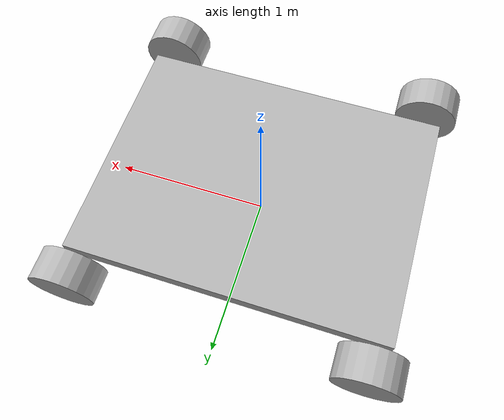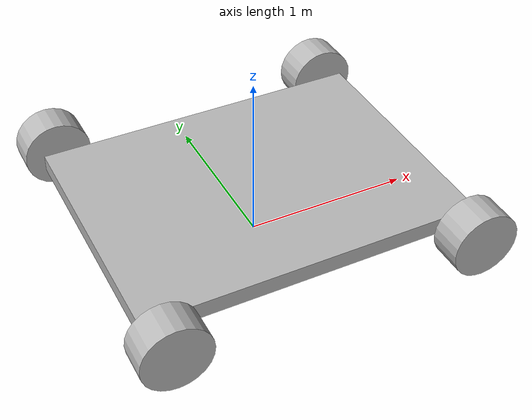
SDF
<?xml version='1.0'?>
<sdf version='1.4'>
  <model name="Junk">
    <static>false</static>

    <!-- BASE MOBILE-->
    <link name='mobile-base'>
      <!-- pose: posizione + orientazione (x,y,z)-->
      <pose>0 0 .3 0 0 0</pose>
      <collision name='collision'>
        <!-- Oggetto collisione = visual-->
        <geometry>
          <box>
            <!-- Dimensioni della collisione-->
            <size>2 1.5 .1</size>
          </box>
        </geometry>
      </collision>

      <visual name='visual'>
        <!-- Oggetto Visualizzabile-->
        <geometry>
          <box>
            <!-- size: lunghezza, larghezza, altezza -->
            <size>2 1.5 .1</size>
          </box>
        </geometry>
      </visual>
    </link>

    <!-- RUOTA SINISTRA AVANTI-->
    <link name="left_forward_wheel">
      <pose>0.9 0.9 0.3 0 1.5707 1.5707</pose>
      <collision name="collision">
        <geometry>
          <cylinder>
            <radius>.2</radius>
            <length>.2</length>
          </cylinder>
        </geometry>
      </collision>
      <visual name="visual">
        <geometry>
          <cylinder>
            <radius>.2</radius>
            <length>.2</length>
          </cylinder>
        </geometry>
      </visual>
    </link>
    <!-- RUOTA SINISTRA INDIETRO-->
    <link name="left_backward_wheel">
      <pose>-0.9 0.9 0.3 0 1.5707 1.5707</pose>
      <collision name="collision">
        <geometry>
          <cylinder>
            <radius>.2</radius>
            <length>.2</length>
          </cylinder>
        </geometry>
      </collision>
      <visual name="visual">
        <geometry>
          <cylinder>
            <radius>.2</radius>
            <length>.2</length>
          </cylinder>
        </geometry>
      </visual>
    </link>
    <!-- RUOTA DESTRA AVANTI-->
    <link name="right_forward_wheel">
      <pose>0.9 -0.9 0.3 0 1.5707 1.5707</pose>
      <collision name="collision">
        <geometry>
          <cylinder>
            <radius>.2</radius>
            <length>.2</length>
          </cylinder>
        </geometry>
      </collision>
      <visual name="visual">
        <geometry>
          <cylinder>
            <radius>.2</radius>
            <length>.2</length>
          </cylinder>
        </geometry>
      </visual>
    </link>
    <!-- RUOTA DESTRA INDIETRO-->
    <link name="right_backward_wheel">
      <pose>-0.9 -0.9 0.3 0 1.5707 1.5707</pose>
      <collision name="collision">
        <geometry>
          <cylinder>
            <radius>.2</radius>
            <length>.2</length>
          </cylinder>
        </geometry>
      </collision>
      <visual name="visual">
        <geometry>
          <cylinder>
            <radius>.2</radius>
            <length>.2</length>
          </cylinder>
        </geometry>
      </visual>
    </link>

    <!-- JOINT PER LE RUOTE-->
    <!--- Joint name: ruota sinistra avanti -->
    <joint type="revolute" name="left_forward_wheel_joint">
      <pose>0 0 0 0 0 0</pose>
      <child>left_forward_wheel</child>
      <parent>mobile-base</parent>
      <axis>
        <xyz>0 1 0</xyz>
      </axis>
    </joint>
    <!--- Joint name: ruota sinistra indietro -->
    <joint type="revolute" name="left_backward_wheel_joint">
      <pose>0 0 0 0 0 0</pose>
      <child>left_backward_wheel</child>
      <parent>mobile-base</parent>
      <axis>
        <xyz>0 1 0</xyz>
      </axis>
    </joint>
    <!--- Joint name: ruota destra avanti -->
    <joint type="revolute" name="right_forward_wheel_joint">
      <pose>0 0 0 0 0 0</pose>
      <child>right_forward_wheel</child>
      <parent>mobile-base</parent>
      <axis>
        <xyz>0 1 0</xyz>
      </axis>
    </joint>
    <!--- Joint name: ruota destra indietro -->
    <joint type="revolute" name="right_backward_wheel_joint">
      <pose>0 0 0 0 0 0</pose>
      <child>right_backward_wheel</child>
      <parent>mobile-base</parent>
      <axis>
        <xyz>0 1 0</xyz>
      </axis>
    </joint>

  </model>
</sdf>
